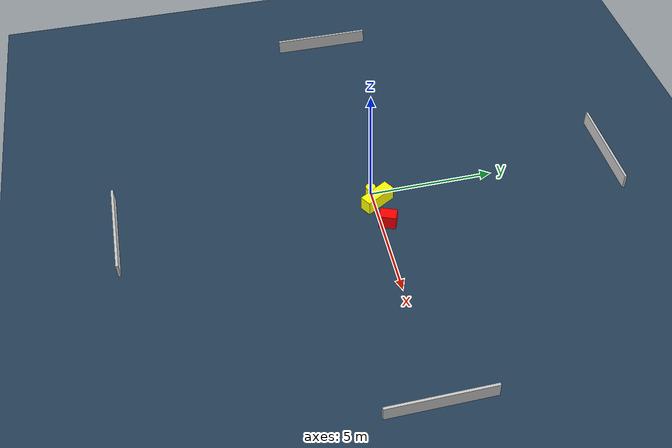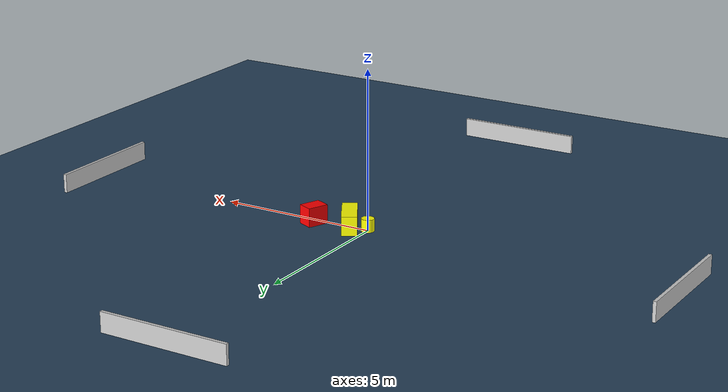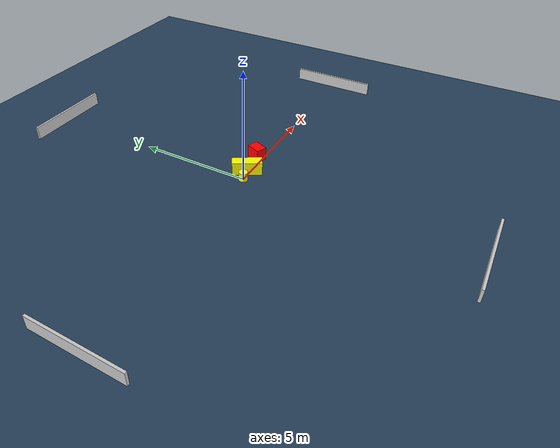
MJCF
<?xml version="1.0" ?>
<mujoco model="generated_environment">
  <option timestep="0.01" integrator="RK4" cone="elliptic"/>
  <default>
    <geom density="1"/>
  </default>
  <asset>
    <texture builtin="gradient" height="3072" name="skybox" rgb1="0.3 0.5 0.7" rgb2="0 0 0" type="skybox" width="512"/>
    <texture builtin="checker" height="300" name="groundplane" rgb1="0.2 0.3 0.4" rgb2="0.1 0.2 0.3" type="2d" width="300"/>
    <material name="groundplane" reflectance="0.2" texrepeat="5 5" texture="groundplane"/>
  </asset>
  <worldbody>
    <light dir="0 0 -1" directional="true" pos="0 0 1.5"/>
    <geom condim="3" friction="0.5 0.005 0.001" material="groundplane" name="floor" pos="0 0 0" size="0 0 0.05" type="plane"/>
    <body name="walls">
      <geom name="wall_1" condim="4" pos="-10.0 0.0 0.3" rgba="0.800000011920929 0.800000011920929 0.800000011920929 1.0" size="0.05 2.0 0.3" type="box"/>
      <geom name="wall_2" condim="4" pos="10.0 0.0 0.3" rgba="0.800000011920929 0.800000011920929 0.800000011920929 1.0" size="0.05 2.0 0.3" type="box"/>
      <geom name="wall_3" condim="4" pos="0.0 -10.0 0.3" rgba="0.800000011920929 0.800000011920929 0.800000011920929 1.0" size="2.0 0.05 0.3" type="box"/>
      <geom name="wall_4" condim="4" pos="0.0 10.0 0.3" rgba="0.800000011920929 0.800000011920929 0.800000011920929 1.0" size="2.0 0.05 0.3" type="box"/>
    </body>
    <body name="robot">
      <joint name="joint_x" type="slide" pos="0 0 0" axis="1 0 0"/>
      <joint name="joint_y" type="slide" pos="0 0 0" axis="0 1 0"/>
      <geom name="robot" type="cylinder" pos="0.0 0.0 0.2" size="0.2 0.2 0.0" mass="5.0" friction="1.0 0.005 0.0001" condim="4" rgba="1.0 1.0 0.0 1.0"/>
    </body>
    <body name="obstacle_1_movable">
      <geom name="obstacle_1_movable" condim="4" pos="0.5626970871517458 0.1299960069965629 0.3" euler="0 0 300.52613289310216" friction="0.0 0.005 0.001" rgba="1.0 1.0 0.0 1.0" size="0.6508088453729073 0.23749592216170623 0.3" type="box" mass="0.1"/>
      <joint type="free"/>
    </body>
    <body name="obstacle_2_static">
      <geom name="obstacle_2_static" condim="4" pos="1.7353830234711567 0.28029521829218096 0.3" euler="0 0 336.9494881484147" friction="0.0 0.005 0.001" rgba="1.0 0.0 0.0 1.0" size="0.24320970718444493 0.33105580356318315 0.3" type="box"/>
    </body>
  </worldbody>
  <actuator>
    <motor name="actuator_x" joint="joint_x" gear="1" ctrlrange="-1 1"/>
    <motor name="actuator_y" joint="joint_y" gear="1" ctrlrange="-1 1"/>
  </actuator>
</mujoco>
